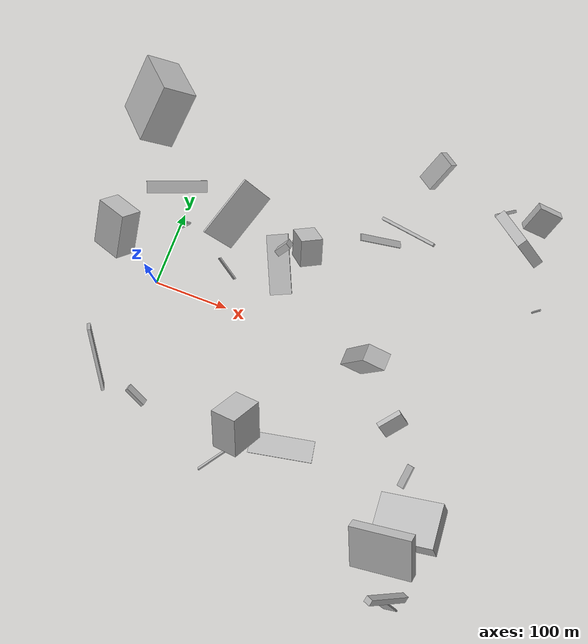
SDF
<sdf version="1.6">
 <world name="default">
  <scene>
   <sky><clouds><speed>12</speed></clouds></sky>
   <ambient>0.4 0.4 0.4 1</ambient>
   <background>0.7 0.7 0.7 1</background>
   <shadows>1</shadows>
  </scene>
  <gravity>0 0 -9.8066</gravity>
  <magnetic_field>6e-06 2.3e-05 -4.2e-05</magnetic_field>
  <physics default="0" name="default_physics" type="ode">
   <ode>
    <solver>
     <type>quick</type>
     <iters>10</iters>
     <sor>1.0</sor>
     <use_dynamic_moi_rescaling>0</use_dynamic_moi_rescaling>
    </solver>
    <constraints>
     <cfm>0</cfm>
     <erp>0.2</erp>
     <contact_max_correcting_vel>100</contact_max_correcting_vel>
     <contact_surface_layer>0.001</contact_surface_layer>
    </constraints>
   </ode>
   <max_step_size>0.004</max_step_size>
   <real_time_factor>1</real_time_factor>
   <real_time_update_rate>250</real_time_update_rate>
  </physics>
  <light name="sun" type="directional">
   <pose>0 0 10 0 0 0</pose>
   <diffuse>0.8 0.8 0.8 1</diffuse>
   <specular>0.2 0.2 0.2 1</specular>
   <attenuation>
    <range>1000</range>
    <constant>0.9</constant>
    <linear>0.01</linear>
    <quadratic>0.001</quadratic>
   </attenuation>
   <direction>-0.5 0.1 -0.9</direction>
  </light>
  <model name="building_1">
   <static>0</static>
   <pose>170.58240742374144 -147.06723526521483 143.77762937192998 -0.9633949010097618 0.7562188978463095 -1.2257093509692354</pose>
   <link name="link">
    <gravity>0</gravity>
    <pose>0 0 17.0 0 0 0</pose>
    <collision name="collision"><geometry><box><size>52 45 34</size></box></geometry></collision>
    <visual name="visual">
     <cast_shadows>0</cast_shadows>
     <geometry><box><size>52 45 34</size></box></geometry>
     <material>
      <script>
       <uri>model://HANNAS_wall/materials/scripts</uri>
       <uri>model://HANNAS_wall/materials/textures</uri>
       <name>vrc/HANNAS_wall</name>
      </script>
     </material>
    </visual>
   </link>
  </model>
  <model name="building_2">
   <static>0</static>
   <pose>180.44750527349015 93.10556083790651 32.726068906065116 0.8057260276557602 -0.2694623951113572 -2.602745261941053</pose>
   <link name="link">
    <gravity>0</gravity>
    <pose>0 0 18.5 0 0 0</pose>
    <collision name="collision"><geometry><box><size>29 36 37</size></box></geometry></collision>
    <visual name="visual">
     <cast_shadows>0</cast_shadows>
     <geometry><box><size>29 36 37</size></box></geometry>
     <material>
      <script>
       <uri>model://HANNAS_wall/materials/scripts</uri>
       <uri>model://HANNAS_wall/materials/textures</uri>
       <name>vrc/HANNAS_wall</name>
      </script>
     </material>
    </visual>
   </link>
  </model>
  <model name="building_3">
   <static>0</static>
   <pose>292.430451364662 176.31052697146225 25.73318426675472 -1.3583323599094426 -0.2302652751658049 -0.21360589530685078</pose>
   <link name="link">
    <gravity>0</gravity>
    <pose>0 0 2.0 0 0 0</pose>
    <collision name="collision"><geometry><box><size>80 8 4</size></box></geometry></collision>
    <visual name="visual">
     <cast_shadows>0</cast_shadows>
     <geometry><box><size>80 8 4</size></box></geometry>
     <material>
      <script>
       <uri>model://HANNAS_wall/materials/scripts</uri>
       <uri>model://HANNAS_wall/materials/textures</uri>
       <name>vrc/HANNAS_wall</name>
      </script>
     </material>
    </visual>
   </link>
  </model>
  <model name="building_4">
   <static>0</static>
   <pose>448.2618068447583 244.66469942939355 64.74290971843024 0.6281453522931938 -0.7686643564191751 1.1744466457835585</pose>
   <link name="link">
    <gravity>0</gravity>
    <pose>0 0 6.0 0 0 0</pose>
    <collision name="collision"><geometry><box><size>37 35 12</size></box></geometry></collision>
    <visual name="visual">
     <cast_shadows>0</cast_shadows>
     <geometry><box><size>37 35 12</size></box></geometry>
     <material>
      <script>
       <uri>model://HANNAS_wall/materials/scripts</uri>
       <uri>model://HANNAS_wall/materials/textures</uri>
       <name>vrc/HANNAS_wall</name>
      </script>
     </material>
    </visual>
   </link>
  </model>
  <model name="building_5">
   <static>0</static>
   <pose>34.67763049202747 -152.78771921042434 14.089869289304406 0.8536200608433896 -0.3928642305300387 2.7175524420251325</pose>
   <link name="link">
    <gravity>0</gravity>
    <pose>0 0 2.5 0 0 0</pose>
    <collision name="collision"><geometry><box><size>30 11 5</size></box></geometry></collision>
    <visual name="visual">
     <cast_shadows>0</cast_shadows>
     <geometry><box><size>30 11 5</size></box></geometry>
     <material>
      <script>
       <uri>model://HANNAS_wall/materials/scripts</uri>
       <uri>model://HANNAS_wall/materials/textures</uri>
       <name>vrc/HANNAS_wall</name>
      </script>
     </material>
    </visual>
   </link>
  </model>
  <model name="building_6">
   <static>0</static>
   <pose>406.38164910710327 242.70022671342198 35.97246224261073 -1.286699621225065 -0.672611872429102 0.4436959734655679</pose>
   <link name="link">
    <gravity>0</gravity>
    <pose>0 0 2.0 0 0 0</pose>
    <collision name="collision"><geometry><box><size>5 56 4</size></box></geometry></collision>
    <visual name="visual">
     <cast_shadows>0</cast_shadows>
     <geometry><box><size>5 56 4</size></box></geometry>
     <material>
      <script>
       <uri>model://HANNAS_wall/materials/scripts</uri>
       <uri>model://HANNAS_wall/materials/textures</uri>
       <name>vrc/HANNAS_wall</name>
      </script>
     </material>
    </visual>
   </link>
  </model>
  <model name="building_7">
   <static>0</static>
   <pose>-69.82333779298196 239.89373080447334 80.16335516364576 -2.887642539136641 0.2590913676107719 0.7346234608948742</pose>
   <link name="link">
    <gravity>0</gravity>
    <pose>0 0 1.5 0 0 0</pose>
    <collision name="collision"><geometry><box><size>5 23 3</size></box></geometry></collision>
    <visual name="visual">
     <cast_shadows>0</cast_shadows>
     <geometry><box><size>5 23 3</size></box></geometry>
     <material>
      <script>
       <uri>model://HANNAS_wall/materials/scripts</uri>
       <uri>model://HANNAS_wall/materials/textures</uri>
       <name>vrc/HANNAS_wall</name>
      </script>
     </material>
    </visual>
   </link>
  </model>
  <model name="building_8">
   <static>0</static>
   <pose>76.89928236371514 57.570269535488336 115.91173422459991 0.8171972122907893 -1.2433944238238857 -2.7521324175628865</pose>
   <link name="link">
    <gravity>0</gravity>
    <pose>0 0 40.0 0 0 0</pose>
    <collision name="collision"><geometry><box><size>80 2 80</size></box></geometry></collision>
    <visual name="visual">
     <cast_shadows>0</cast_shadows>
     <geometry><box><size>80 2 80</size></box></geometry>
     <material>
      <script>
       <uri>model://HANNAS_wall/materials/scripts</uri>
       <uri>model://HANNAS_wall/materials/textures</uri>
       <name>vrc/HANNAS_wall</name>
      </script>
     </material>
    </visual>
   </link>
  </model>
  <model name="building_9">
   <static>0</static>
   <pose>418.88560019498505 -276.446284275824 120.2447969631645 0.9498498312684521 -0.962409712408856 -2.798123694747867</pose>
   <link name="link">
    <gravity>0</gravity>
    <pose>0 0 4.0 0 0 0</pose>
    <collision name="collision"><geometry><box><size>80 9 8</size></box></geometry></collision>
    <visual name="visual">
     <cast_shadows>0</cast_shadows>
     <geometry><box><size>80 9 8</size></box></geometry>
     <material>
      <script>
       <uri>model://HANNAS_wall/materials/scripts</uri>
       <uri>model://HANNAS_wall/materials/textures</uri>
       <name>vrc/HANNAS_wall</name>
      </script>
     </material>
    </visual>
   </link>
  </model>
  <model name="building_10">
   <static>0</static>
   <pose>-46.084185652620306 189.5347543282748 100.01847116796846 -2.2648763323336634 -0.6887266076354793 1.2876438505646175</pose>
   <link name="link">
    <gravity>0</gravity>
    <pose>0 0 40.0 0 0 0</pose>
    <collision name="collision"><geometry><box><size>80 46 80</size></box></geometry></collision>
    <visual name="visual">
     <cast_shadows>0</cast_shadows>
     <geometry><box><size>80 46 80</size></box></geometry>
     <material>
      <script>
       <uri>model://HANNAS_wall/materials/scripts</uri>
       <uri>model://HANNAS_wall/materials/textures</uri>
       <name>vrc/HANNAS_wall</name>
      </script>
     </material>
    </visual>
   </link>
  </model>
  <model name="building_11">
   <static>0</static>
   <pose>298.9793402990895 252.67119492767216 75.25617059060707 2.4039384884142803 0.16782592302286706 2.505558689784376</pose>
   <link name="link">
    <gravity>0</gravity>
    <pose>0 0 6.5 0 0 0</pose>
    <collision name="collision"><geometry><box><size>23 45 13</size></box></geometry></collision>
    <visual name="visual">
     <cast_shadows>0</cast_shadows>
     <geometry><box><size>23 45 13</size></box></geometry>
     <material>
      <script>
       <uri>model://HANNAS_wall/materials/scripts</uri>
       <uri>model://HANNAS_wall/materials/textures</uri>
       <name>vrc/HANNAS_wall</name>
      </script>
     </material>
    </visual>
   </link>
  </model>
  <model name="building_12">
   <static>0</static>
   <pose>486.78670603569174 137.884051178524 20.105721620213096 0.959694453005389 -1.0633502193444158 0.3911806174007151</pose>
   <link name="link">
    <gravity>0</gravity>
    <pose>0 0 1.0 0 0 0</pose>
    <collision name="collision"><geometry><box><size>17 2 2</size></box></geometry></collision>
    <visual name="visual">
     <cast_shadows>0</cast_shadows>
     <geometry><box><size>17 2 2</size></box></geometry>
     <material>
      <script>
       <uri>model://HANNAS_wall/materials/scripts</uri>
       <uri>model://HANNAS_wall/materials/textures</uri>
       <name>vrc/HANNAS_wall</name>
      </script>
     </material>
    </visual>
   </link>
  </model>
  <model name="building_13">
   <static>0</static>
   <pose>4.060465049004435 -158.79306035641636 69.07493840695497 0.24128608930357656 1.061483501564241 2.3816637857135388</pose>
   <link name="link">
    <gravity>0</gravity>
    <pose>0 0 40.0 0 0 0</pose>
    <collision name="collision"><geometry><box><size>30 4 80</size></box></geometry></collision>
    <visual name="visual">
     <cast_shadows>0</cast_shadows>
     <geometry><box><size>30 4 80</size></box></geometry>
     <material>
      <script>
       <uri>model://HANNAS_wall/materials/scripts</uri>
       <uri>model://HANNAS_wall/materials/textures</uri>
       <name>vrc/HANNAS_wall</name>
      </script>
     </material>
    </visual>
   </link>
  </model>
  <model name="building_14">
   <static>0</static>
   <pose>288.9630882658375 153.4014649142356 39.65239418339024 -0.9364020829837162 0.02147128456134579 1.953453123742737</pose>
   <link name="link">
    <gravity>0</gravity>
    <pose>0 0 33.0 0 0 0</pose>
    <collision name="collision"><geometry><box><size>9 2 66</size></box></geometry></collision>
    <visual name="visual">
     <cast_shadows>0</cast_shadows>
     <geometry><box><size>9 2 66</size></box></geometry>
     <material>
      <script>
       <uri>model://HANNAS_wall/materials/scripts</uri>
       <uri>model://HANNAS_wall/materials/textures</uri>
       <name>vrc/HANNAS_wall</name>
      </script>
     </material>
    </visual>
   </link>
  </model>
  <model name="building_15">
   <static>0</static>
   <pose>427.7085596854757 205.08986781489259 53.20535598706611 0.9947292011962923 -0.9842584287017475 3.0289403789731937</pose>
   <link name="link">
    <gravity>0</gravity>
    <pose>0 0 7.0 0 0 0</pose>
    <collision name="collision"><geometry><box><size>61 59 14</size></box></geometry></collision>
    <visual name="visual">
     <cast_shadows>0</cast_shadows>
     <geometry><box><size>61 59 14</size></box></geometry>
     <material>
      <script>
       <uri>model://HANNAS_wall/materials/scripts</uri>
       <uri>model://HANNAS_wall/materials/textures</uri>
       <name>vrc/HANNAS_wall</name>
      </script>
     </material>
    </visual>
   </link>
  </model>
  <model name="building_16">
   <static>0</static>
   <pose>85.85617704725297 47.32360642420848 23.730440486560983 1.0575019835762083 -1.0251820571028925 0.033163591437061234</pose>
   <link name="link">
    <gravity>0</gravity>
    <pose>0 0 1.0 0 0 0</pose>
    <collision name="collision"><geometry><box><size>6 35 2</size></box></geometry></collision>
    <visual name="visual">
     <cast_shadows>0</cast_shadows>
     <geometry><box><size>6 35 2</size></box></geometry>
     <material>
      <script>
       <uri>model://HANNAS_wall/materials/scripts</uri>
       <uri>model://HANNAS_wall/materials/textures</uri>
       <name>vrc/HANNAS_wall</name>
      </script>
     </material>
    </visual>
   </link>
  </model>
  <model name="building_17">
   <static>0</static>
   <pose>-42.52463471603062 6.312391921771102 106.07281690269883 0.4266486025834632 -0.6701329092929122 -2.1828891529133467</pose>
   <link name="link">
    <gravity>0</gravity>
    <pose>0 0 30.0 0 0 0</pose>
    <collision name="collision"><geometry><box><size>28 43 60</size></box></geometry></collision>
    <visual name="visual">
     <cast_shadows>0</cast_shadows>
     <geometry><box><size>28 43 60</size></box></geometry>
     <material>
      <script>
       <uri>model://HANNAS_wall/materials/scripts</uri>
       <uri>model://HANNAS_wall/materials/textures</uri>
       <name>vrc/HANNAS_wall</name>
      </script>
     </material>
    </visual>
   </link>
  </model>
  <model name="building_18">
   <static>0</static>
   <pose>407.4116257489324 -245.2057714609141 71.10037233889209 0.5209867091711222 -0.7971580104357582 -1.8365294828813932</pose>
   <link name="link">
    <gravity>0</gravity>
    <pose>0 0 30.0 0 0 0</pose>
    <collision name="collision"><geometry><box><size>14 80 60</size></box></geometry></collision>
    <visual name="visual">
     <cast_shadows>0</cast_shadows>
     <geometry><box><size>14 80 60</size></box></geometry>
     <material>
      <script>
       <uri>model://HANNAS_wall/materials/scripts</uri>
       <uri>model://HANNAS_wall/materials/textures</uri>
       <name>vrc/HANNAS_wall</name>
      </script>
     </material>
    </visual>
   </link>
  </model>
  <model name="building_19">
   <static>0</static>
   <pose>240.34816006706293 -150.33947268480313 79.95863133147957 -3.0493431338274246 0.04512273690437766 -2.953462427839715</pose>
   <link name="link">
    <gravity>0</gravity>
    <pose>0 0 1.0 0 0 0</pose>
    <collision name="collision"><geometry><box><size>80 27 2</size></box></geometry></collision>
    <visual name="visual">
     <cast_shadows>0</cast_shadows>
     <geometry><box><size>80 27 2</size></box></geometry>
     <material>
      <script>
       <uri>model://HANNAS_wall/materials/scripts</uri>
       <uri>model://HANNAS_wall/materials/textures</uri>
       <name>vrc/HANNAS_wall</name>
      </script>
     </material>
    </visual>
   </link>
  </model>
  <model name="building_20">
   <static>0</static>
   <pose>349.3548979489637 -83.48992827721234 35.75298448862122 -1.248468035224439 1.0080978408158174 -0.41872915949493356</pose>
   <link name="link">
    <gravity>0</gravity>
    <pose>0 0 16.5 0 0 0</pose>
    <collision name="collision"><geometry><box><size>29 7 33</size></box></geometry></collision>
    <visual name="visual">
     <cast_shadows>0</cast_shadows>
     <geometry><box><size>29 7 33</size></box></geometry>
     <material>
      <script>
       <uri>model://HANNAS_wall/materials/scripts</uri>
       <uri>model://HANNAS_wall/materials/textures</uri>
       <name>vrc/HANNAS_wall</name>
      </script>
     </material>
    </visual>
   </link>
  </model>
  <model name="building_21">
   <static>0</static>
   <pose>30.98473830592087 62.01589534255251 110.51433224842901 1.7164271833516522 -0.8227780844442123 -2.7660610997571378</pose>
   <link name="link">
    <gravity>0</gravity>
    <pose>0 0 1.0 0 0 0</pose>
    <collision name="collision"><geometry><box><size>7 15 2</size></box></geometry></collision>
    <visual name="visual">
     <cast_shadows>0</cast_shadows>
     <geometry><box><size>7 15 2</size></box></geometry>
     <material>
      <script>
       <uri>model://HANNAS_wall/materials/scripts</uri>
       <uri>model://HANNAS_wall/materials/textures</uri>
       <name>vrc/HANNAS_wall</name>
      </script>
     </material>
    </visual>
   </link>
  </model>
  <model name="building_22">
   <static>0</static>
   <pose>423.17667693993945 -184.7593993255009 59.89577680687148 -0.3454312857549654 0.2540940849564822 1.6316089290184315</pose>
   <link name="link">
    <gravity>0</gravity>
    <pose>0 0 13.5 0 0 0</pose>
    <collision name="collision"><geometry><box><size>58 80 27</size></box></geometry></collision>
    <visual name="visual">
     <cast_shadows>0</cast_shadows>
     <geometry><box><size>58 80 27</size></box></geometry>
     <material>
      <script>
       <uri>model://HANNAS_wall/materials/scripts</uri>
       <uri>model://HANNAS_wall/materials/textures</uri>
       <name>vrc/HANNAS_wall</name>
      </script>
     </material>
    </visual>
   </link>
  </model>
  <model name="building_23">
   <static>0</static>
   <pose>423.1000481269923 -283.50965575613697 48.725791507176545 1.7535845228430647 0.34845852239278985 -2.9736853837197175</pose>
   <link name="link">
    <gravity>0</gravity>
    <pose>0 0 1.0 0 0 0</pose>
    <collision name="collision"><geometry><box><size>18 80 2</size></box></geometry></collision>
    <visual name="visual">
     <cast_shadows>0</cast_shadows>
     <geometry><box><size>18 80 2</size></box></geometry>
     <material>
      <script>
       <uri>model://HANNAS_wall/materials/scripts</uri>
       <uri>model://HANNAS_wall/materials/textures</uri>
       <name>vrc/HANNAS_wall</name>
      </script>
     </material>
    </visual>
   </link>
  </model>
  <model name="building_24">
   <static>0</static>
   <pose>396.0861930165762 -142.04133424749162 35.56041917334873 1.3748457077299705 0.9520742397653762 2.8597005614704845</pose>
   <link name="link">
    <gravity>0</gravity>
    <pose>0 0 15.0 0 0 0</pose>
    <collision name="collision"><geometry><box><size>14 2 30</size></box></geometry></collision>
    <visual name="visual">
     <cast_shadows>0</cast_shadows>
     <geometry><box><size>14 2 30</size></box></geometry>
     <material>
      <script>
       <uri>model://HANNAS_wall/materials/scripts</uri>
       <uri>model://HANNAS_wall/materials/textures</uri>
       <name>vrc/HANNAS_wall</name>
      </script>
     </material>
    </visual>
   </link>
  </model>
  <model name="building_25">
   <static>0</static>
   <pose>161.4479619078573 65.8551614920121 172.6506635651553 2.1994701484108345 0.9165104819698465 1.5798613895536688</pose>
   <link name="link">
    <gravity>0</gravity>
    <pose>0 0 4.0 0 0 0</pose>
    <collision name="collision"><geometry><box><size>16 18 8</size></box></geometry></collision>
    <visual name="visual">
     <cast_shadows>0</cast_shadows>
     <geometry><box><size>16 18 8</size></box></geometry>
     <material>
      <script>
       <uri>model://HANNAS_wall/materials/scripts</uri>
       <uri>model://HANNAS_wall/materials/textures</uri>
       <name>vrc/HANNAS_wall</name>
      </script>
     </material>
    </visual>
   </link>
  </model>
  <model name="building_26">
   <static>0</static>
   <pose>-46.14584033062144 103.19652472709299 63.947627499369226 1.8898710294836405 -0.3586135966014706 1.927203862991737</pose>
   <link name="link">
    <gravity>0</gravity>
    <pose>0 0 40.0 0 0 0</pose>
    <collision name="collision"><geometry><box><size>16 2 80</size></box></geometry></collision>
    <visual name="visual">
     <cast_shadows>0</cast_shadows>
     <geometry><box><size>16 2 80</size></box></geometry>
     <material>
      <script>
       <uri>model://HANNAS_wall/materials/scripts</uri>
       <uri>model://HANNAS_wall/materials/textures</uri>
       <name>vrc/HANNAS_wall</name>
      </script>
     </material>
    </visual>
   </link>
  </model>
  <model name="building_27">
   <static>0</static>
   <pose>288.19561508595507 -28.734373703369457 137.05280762392357 0.3091130506944088 0.029228433542282908 1.5384859002930904</pose>
   <link name="link">
    <gravity>0</gravity>
    <pose>0 0 40.0 0 0 0</pose>
    <collision name="collision"><geometry><box><size>20 28 80</size></box></geometry></collision>
    <visual name="visual">
     <cast_shadows>0</cast_shadows>
     <geometry><box><size>20 28 80</size></box></geometry>
     <material>
      <script>
       <uri>model://HANNAS_wall/materials/scripts</uri>
       <uri>model://HANNAS_wall/materials/textures</uri>
       <name>vrc/HANNAS_wall</name>
      </script>
     </material>
    </visual>
   </link>
  </model>
  <model name="building_28">
   <static>0</static>
   <pose>146.7646020897505 77.04151341719769 18.476385656181535 -2.9080916851337637 -0.23092291239577942 0.36932963983868256</pose>
   <link name="link">
    <gravity>0</gravity>
    <pose>0 0 1.0 0 0 0</pose>
    <collision name="collision"><geometry><box><size>30 80 2</size></box></geometry></collision>
    <visual name="visual">
     <cast_shadows>0</cast_shadows>
     <geometry><box><size>30 80 2</size></box></geometry>
     <material>
      <script>
       <uri>model://HANNAS_wall/materials/scripts</uri>
       <uri>model://HANNAS_wall/materials/textures</uri>
       <name>vrc/HANNAS_wall</name>
      </script>
     </material>
    </visual>
   </link>
  </model>
  <model name="building_29">
   <static>0</static>
   <pose>175.06542288062965 -181.38947559080057 58.58842324953382 -2.386780378693465 -0.2695786998595304 0.9240256563152793</pose>
   <link name="link">
    <gravity>0</gravity>
    <pose>0 0 2.0 0 0 0</pose>
    <collision name="collision"><geometry><box><size>80 2 4</size></box></geometry></collision>
    <visual name="visual">
     <cast_shadows>0</cast_shadows>
     <geometry><box><size>80 2 4</size></box></geometry>
     <material>
      <script>
       <uri>model://HANNAS_wall/materials/scripts</uri>
       <uri>model://HANNAS_wall/materials/textures</uri>
       <name>vrc/HANNAS_wall</name>
      </script>
     </material>
    </visual>
   </link>
  </model>
 </world>
</sdf>
